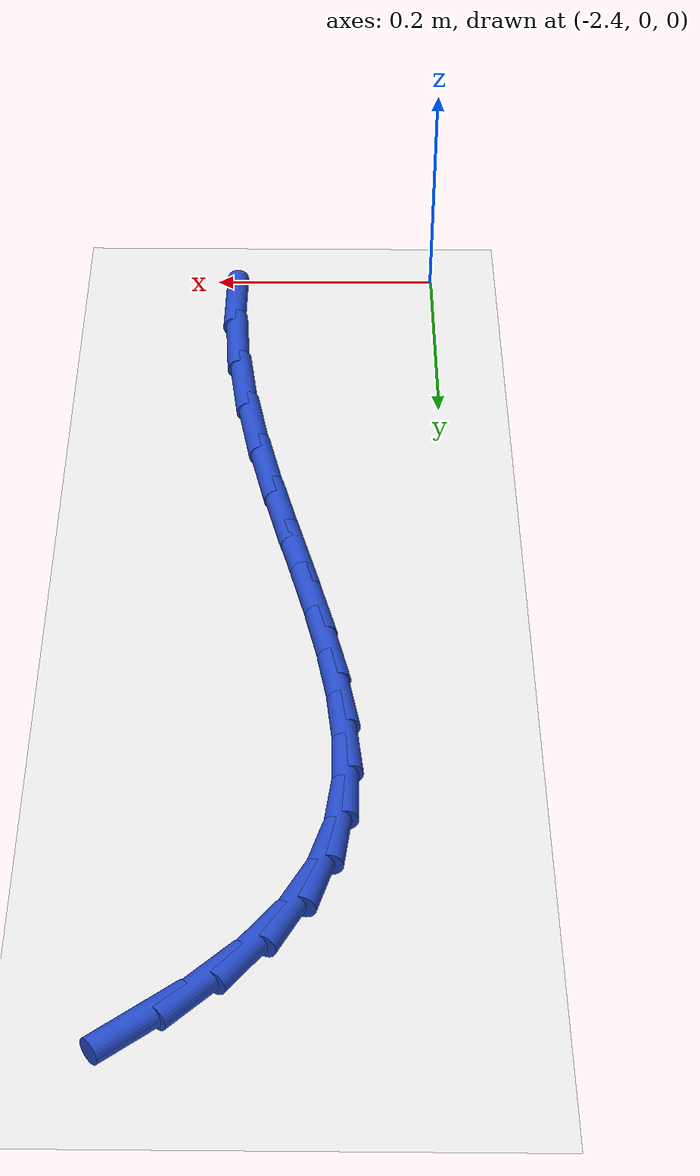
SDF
<sdf version="1.6">
 <world name="default">
  <model name="ground_plane">
   <static>1</static>
   <link name="link">
    <collision name="collision">
     <geometry><plane><normal>0 0 1</normal><size>100 100</size></plane></geometry>
     <surface><friction><ode><mu>100</mu><mu2>50</mu2></ode></friction></surface>
    </collision>
    <visual name="visual">
     <cast_shadows>0</cast_shadows>
     <geometry><plane><normal>0 0 1</normal><size>100 100</size></plane></geometry>
     <material>
      <script><uri>file://media/materials/scripts/gazebo.material</uri><name>Gazebo/WhiteGlow</name></script>
     </material>
    </visual>
   </link>
  </model>
  <model name="line">
   <link name="link_53">
    <pose>-2.1743259950016838 0.891661434119617 0.01 0 1.57 0.6758173249229327</pose>
    <collision name="collision">
     <geometry><cylinder><radius>0.01</radius><length>0.08</length></cylinder></geometry>
    </collision>
    <visual name="visual">
     <material>
      <script><name>Gazebo/Blue</name><uri>file://media/materials/scripts/gazebo.material</uri></script>
     </material>
     <geometry><cylinder><radius>0.01</radius><length>0.08</length></cylinder></geometry>
    </visual>
   </link>
   <link name="link_54">
    <pose>-2.213583885360653 0.8601857613960011 0.01 0 1.57 0.7865676334223154</pose>
    <collision name="collision">
     <geometry><cylinder><radius>0.01</radius><length>0.08</length></cylinder></geometry>
    </collision>
    <visual name="visual">
     <material>
      <script><name>Gazebo/Blue</name><uri>file://media/materials/scripts/gazebo.material</uri></script>
     </material>
     <geometry><cylinder><radius>0.01</radius><length>0.08</length></cylinder></geometry>
    </visual>
   </link>
   <link name="link_55">
    <pose>-2.2471717275986838 0.8265192671916023 0.01 0 1.57 0.9237865309065005</pose>
    <collision name="collision">
     <geometry><cylinder><radius>0.01</radius><length>0.08</length></cylinder></geometry>
    </collision>
    <visual name="visual">
     <material>
      <script><name>Gazebo/Blue</name><uri>file://media/materials/scripts/gazebo.material</uri></script>
     </material>
     <geometry><cylinder><radius>0.01</radius><length>0.08</length></cylinder></geometry>
    </visual>
   </link>
   <link name="link_56">
    <pose>-2.274351723960442 0.7905429454349258 0.01 0 1.57 1.0899460929267193</pose>
    <collision name="collision">
     <geometry><cylinder><radius>0.01</radius><length>0.08</length></cylinder></geometry>
    </collision>
    <visual name="visual">
     <material>
      <script><name>Gazebo/Blue</name><uri>file://media/materials/scripts/gazebo.material</uri></script>
     </material>
     <geometry><cylinder><radius>0.01</radius><length>0.08</length></cylinder></geometry>
    </visual>
   </link>
   <link name="link_57">
    <pose>-2.294387315599736 0.7521379255817454 0.01 0 1.57 1.272039974736983</pose>
    <collision name="collision">
     <geometry><cylinder><radius>0.01</radius><length>0.08</length></cylinder></geometry>
    </collision>
    <visual name="visual">
     <material>
      <script><name>Gazebo/Blue</name><uri>file://media/materials/scripts/gazebo.material</uri></script>
     </material>
     <geometry><cylinder><radius>0.01</radius><length>0.08</length></cylinder></geometry>
    </visual>
   </link>
   <link name="link_58">
    <pose>-2.3069847354021205 0.7112337751470994 0.01 0 1.57 1.4341497479571235</pose>
    <collision name="collision">
     <geometry><cylinder><radius>0.01</radius><length>0.08</length></cylinder></geometry>
    </collision>
    <visual name="visual">
     <material>
      <script><name>Gazebo/Blue</name><uri>file://media/materials/scripts/gazebo.material</uri></script>
     </material>
     <geometry><cylinder><radius>0.01</radius><length>0.08</length></cylinder></geometry>
    </visual>
   </link>
   <link name="link_59">
    <pose>-2.3129460391467562 0.6678799363646719 0.01 0 1.57 1.5643720903490415</pose>
    <collision name="collision">
     <geometry><cylinder><radius>0.01</radius><length>0.08</length></cylinder></geometry>
    </collision>
    <visual name="visual">
     <material>
      <script><name>Gazebo/Blue</name><uri>file://media/materials/scripts/gazebo.material</uri></script>
     </material>
     <geometry><cylinder><radius>0.01</radius><length>0.08</length></cylinder></geometry>
    </visual>
   </link>
   <link name="link_60">
    <pose>-2.3132398611833795 0.6221440739011687 0.01 0 1.57 -1.4793764221226882</pose>
    <collision name="collision">
     <geometry><cylinder><radius>0.01</radius><length>0.08</length></cylinder></geometry>
    </collision>
    <visual name="visual">
     <material>
      <script><name>Gazebo/Blue</name><uri>file://media/materials/scripts/gazebo.material</uri></script>
     </material>
     <geometry><cylinder><radius>0.01</radius><length>0.08</length></cylinder></geometry>
    </visual>
   </link>
   <link name="link_61">
    <pose>-2.308834835861724 0.5740938524232932 0.01 0 1.57 -1.4104407899527318</pose>
    <collision name="collision">
     <geometry><cylinder><radius>0.01</radius><length>0.08</length></cylinder></geometry>
    </collision>
    <visual name="visual">
     <material>
      <script><name>Gazebo/Blue</name><uri>file://media/materials/scripts/gazebo.material</uri></script>
     </material>
     <geometry><cylinder><radius>0.01</radius><length>0.08</length></cylinder></geometry>
    </visual>
   </link>
   <link name="link_62">
    <pose>-2.3006995975315254 0.5237969365977513 0.01 0 1.57 -1.3660525208758205</pose>
    <collision name="collision">
     <geometry><cylinder><radius>0.01</radius><length>0.08</length></cylinder></geometry>
    </collision>
    <visual name="visual">
     <material>
      <script><name>Gazebo/Blue</name><uri>file://media/materials/scripts/gazebo.material</uri></script>
     </material>
     <geometry><cylinder><radius>0.01</radius><length>0.08</length></cylinder></geometry>
    </visual>
   </link>
   <link name="link_63">
    <pose>-2.289802780542519 0.4713209910912472 0.01 0 1.57 -1.3423859269065108</pose>
    <collision name="collision">
     <geometry><cylinder><radius>0.01</radius><length>0.08</length></cylinder></geometry>
    </collision>
    <visual name="visual">
     <material>
      <script><name>Gazebo/Blue</name><uri>file://media/materials/scripts/gazebo.material</uri></script>
     </material>
     <geometry><cylinder><radius>0.01</radius><length>0.08</length></cylinder></geometry>
    </visual>
   </link>
   <link name="link_64">
    <pose>-2.277113019244438 0.4167336805704857 0.01 0 1.57 -1.3365435731937378</pose>
    <collision name="collision">
     <geometry><cylinder><radius>0.01</radius><length>0.08</length></cylinder></geometry>
    </collision>
    <visual name="visual">
     <material>
      <script><name>Gazebo/Blue</name><uri>file://media/materials/scripts/gazebo.material</uri></script>
     </material>
     <geometry><cylinder><radius>0.01</radius><length>0.08</length></cylinder></geometry>
    </visual>
   </link>
   <link name="link_65">
    <pose>-2.2635989479870195 0.36010266970217186 0.01 0 1.57 -1.346509229383936</pose>
    <collision name="collision">
     <geometry><cylinder><radius>0.01</radius><length>0.08</length></cylinder></geometry>
    </collision>
    <visual name="visual">
     <material>
      <script><name>Gazebo/Blue</name><uri>file://media/materials/scripts/gazebo.material</uri></script>
     </material>
     <geometry><cylinder><radius>0.01</radius><length>0.08</length></cylinder></geometry>
    </visual>
   </link>
   <link name="link_66">
    <pose>-2.2502292011199967 0.3014956231530094 0.01 0 1.57 -1.3709597286596942</pose>
    <collision name="collision">
     <geometry><cylinder><radius>0.01</radius><length>0.08</length></cylinder></geometry>
    </collision>
    <visual name="visual">
     <material>
      <script><name>Gazebo/Blue</name><uri>file://media/materials/scripts/gazebo.material</uri></script>
     </material>
     <geometry><cylinder><radius>0.01</radius><length>0.08</length></cylinder></geometry>
    </visual>
   </link>
   <link name="link_67">
    <pose>-2.237972412993105 0.24098020558970415 0.01 0 1.57 -1.4090431948801612</pose>
    <collision name="collision">
     <geometry><cylinder><radius>0.01</radius><length>0.08</length></cylinder></geometry>
    </collision>
    <visual name="visual">
     <material>
      <script><name>Gazebo/Blue</name><uri>file://media/materials/scripts/gazebo.material</uri></script>
     </material>
     <geometry><cylinder><radius>0.01</radius><length>0.08</length></cylinder></geometry>
    </visual>
   </link>
   <link name="link_68">
    <pose>-2.2277972179560797 0.17862408167896002 0.01 0 1.57 -1.4601467340829855</pose>
    <collision name="collision">
     <geometry><cylinder><radius>0.01</radius><length>0.08</length></cylinder></geometry>
    </collision>
    <visual name="visual">
     <material>
      <script><name>Gazebo/Blue</name><uri>file://media/materials/scripts/gazebo.material</uri></script>
     </material>
     <geometry><cylinder><radius>0.01</radius><length>0.08</length></cylinder></geometry>
    </visual>
   </link>
   <link name="link_69">
    <pose>-2.2206722503586556 0.11449491608748236 0.01 0 1.57 -1.5236305514877013</pose>
    <collision name="collision">
     <geometry><cylinder><radius>0.01</radius><length>0.08</length></cylinder></geometry>
    </collision>
    <visual name="visual">
     <material>
      <script><name>Gazebo/Blue</name><uri>file://media/materials/scripts/gazebo.material</uri></script>
     </material>
     <geometry><cylinder><radius>0.01</radius><length>0.08</length></cylinder></geometry>
    </visual>
   </link>
   <link name="link_70">
    <pose>-2.217564825250679 0.04866072856676281 0.01 0 1.57 1.5497219466868388</pose>
    <collision name="collision">
     <geometry><cylinder><radius>0.01</radius><length>0.08</length></cylinder></geometry>
    </collision>
    <visual name="visual">
     <material>
      <script><name>Gazebo/Blue</name><uri>file://media/materials/scripts/gazebo.material</uri></script>
     </material>
     <geometry><cylinder><radius>0.01</radius><length>0.08</length></cylinder></geometry>
    </visual>
   </link>
  </model>
 </world>
</sdf>
